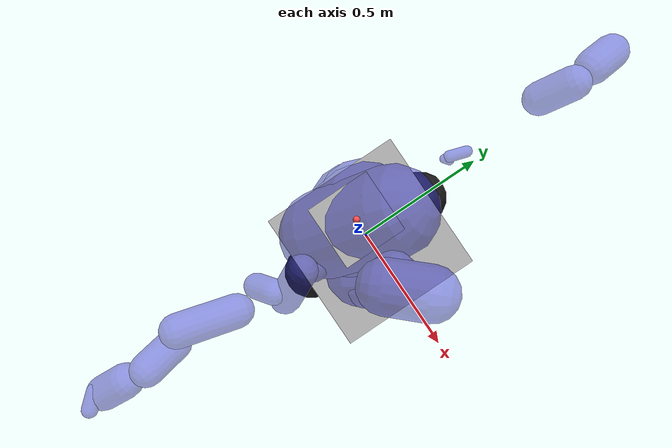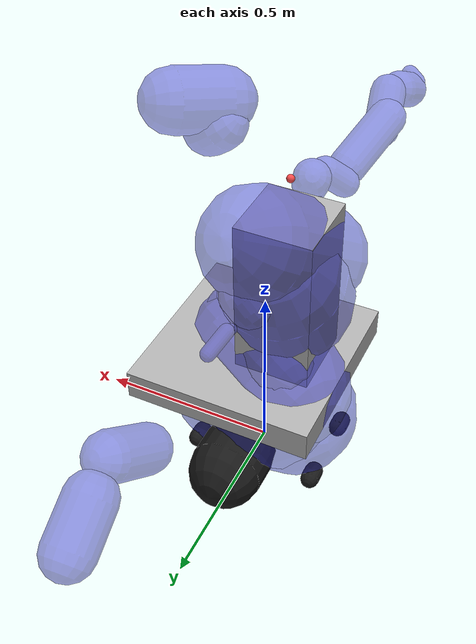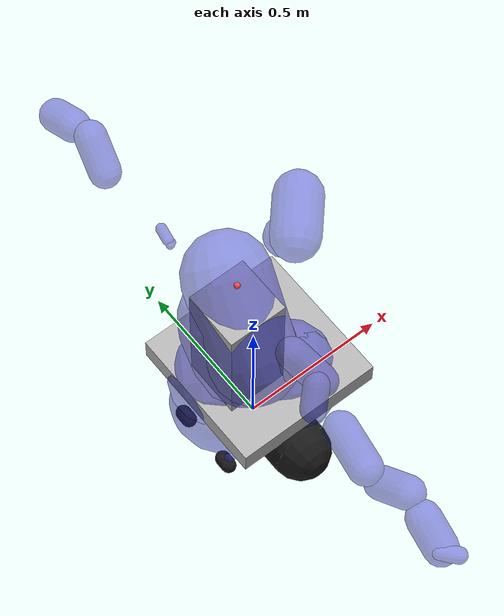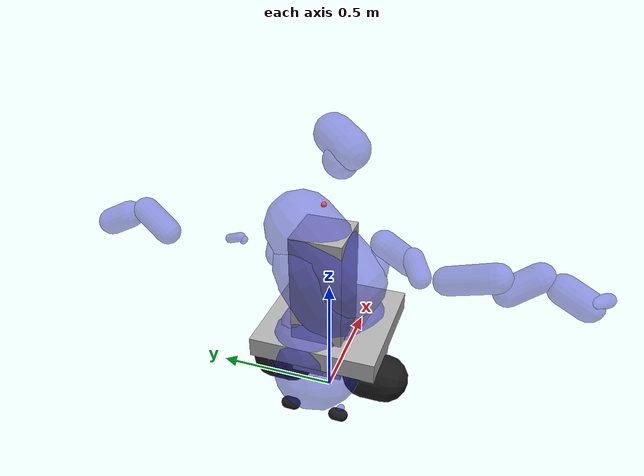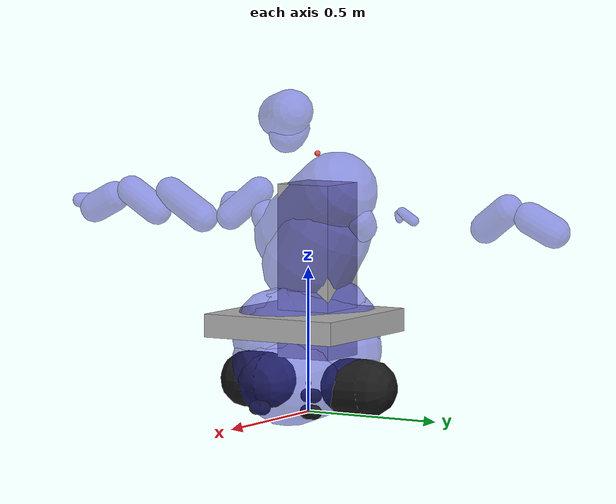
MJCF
<mujoco model="tiago_dual">
  <compiler angle="radian"/>
  <asset>
    <material name="DarkGrey" specular="0.5" shininess="0.45" rgba="0.1 0.1 0.1 1.0"/>
    <material name="Grey" specular="0.5" shininess="0.45" rgba="0.7 0.7 0.7 1.0"/>
    <material name="LightGrey" specular="0.5" shininess="0.45" rgba="0.7 0.7 0.7 1.0"/>
    <material name="White" specular="0.5" shininess="0.45" rgba="1.0 1.0 1.0 1.0"/>
    <material name="Orange" specular="0.5" shininess="0.45" rgba="1.0 0.35 0.0 1.0"/>
    <mesh name="base" file="meshes/base/base.stl"/>
    <mesh name="base_collision" file="meshes/base/high_resolution/base_collision.stl"/>
    <mesh name="base_ring" file="meshes/base/base_ring.stl"/>
    <mesh name="wheel" file="meshes/wheels/wheel.stl"/>
    <mesh name="caster_1" file="meshes/wheels/caster_1.stl"/>
    <mesh name="caster_2" file="meshes/wheels/caster_2.stl"/>
    <mesh name="torso_fix" file="meshes/torso/torso_fix.stl"/>
    <mesh name="torso_lift_dual_arm" file="meshes/torso/torso_lift_dual_arm.stl"/>
    <mesh name="torso_lift_collision_core" file="meshes/torso/torso_lift_collision_core.stl"/>
    <mesh name="torso_lift_collision_shoulder" file="meshes/torso/torso_lift_collision_shoulder.stl"/>
    <mesh name="head_1" file="meshes/head/head_1.stl"/>
    <mesh name="head_1_collision" file="meshes/head/head_1.stl"/>
    <mesh name="head_2" file="meshes/head/head_2.stl"/>
    <mesh name="head_2_collision" file="meshes/head/head_2.stl"/>
    <mesh name="arm_1" file="meshes/arm/arm_1.stl"/>
    <mesh name="arm_1_collision" file="meshes/arm/arm_1.stl"/>
    <mesh name="arm_2" file="meshes/arm/arm_2.stl"/>
    <mesh name="arm_2_collision" file="meshes/arm/arm_2.stl"/>
    <mesh name="arm_3" file="meshes/arm/arm_3.stl"/>
    <mesh name="arm_3_collision" file="meshes/arm/arm_3.stl"/>
    <mesh name="arm_4" file="meshes/arm/arm_4.stl"/>
    <mesh name="arm_4_collision" file="meshes/arm/arm_4.stl"/>
    <mesh name="arm_5-wrist-2017" file="meshes/arm/arm_5-wrist-2017.stl"/>
    <mesh name="arm_5_collision-wrist-2017" file="meshes/arm/arm_5-wrist-2017.stl"/>
    <mesh name="arm_6-wrist-2017" file="meshes/arm/arm_6-wrist-2017.stl"/>
    <mesh name="arm_6_collision-wrist-2017" file="meshes/arm/arm_6-wrist-2017.stl"/>
    <mesh name="arm_1_left" file="meshes/arm/arm_1.stl" scale="1 -1 -1"/>
    <mesh name="arm_1_left_collision" file="meshes/arm/arm_1.stl" scale="1 -1 -1"/>
    <mesh name="arm_2_left" file="meshes/arm/arm_2.stl" scale="1 1 -1"/>
    <mesh name="arm_2_left_collision" file="meshes/arm/arm_2.stl" scale="1 1 -1"/>
    <mesh name="arm_3_left" file="meshes/arm/arm_3.stl" scale="1 1 -1"/>
    <mesh name="arm_3_left_collision" file="meshes/arm/arm_3.stl" scale="1 1 -1"/>
    <mesh name="arm_4_left" file="meshes/arm/arm_4.stl" scale="-1 -1 -1"/>
    <mesh name="arm_4_left_collision" file="meshes/arm/arm_4.stl" scale="-1 -1 -1"/>
    <mesh name="arm_5_left-wrist-2017" file="meshes/arm/arm_5-wrist-2017.stl" scale="-1 -1 -1"/>
    <mesh name="arm_5_left_collision-wrist-2017" file="meshes/arm/arm_5-wrist-2017.stl" scale="-1 -1 -1"/>
    <mesh name="arm_6_left-wrist-2017" file="meshes/arm/arm_6-wrist-2017.stl" scale="-1 1 1"/>
    <mesh name="arm_6_left_collision-wrist-2017" file="meshes/arm/arm_6-wrist-2017.stl" scale="-1 1 1"/>
    <mesh name="gripper_link" file="meshes/grippers/gripper_link.stl"/>
    <mesh name="gripper_link_collision" file="meshes/grippers/gripper_link_collision.stl"/>
    <mesh name="gripper_finger_link" file="meshes/grippers/gripper_finger_link.stl"/>
    <mesh name="palm" file="meshes/grippers/palm.stl"/>
    <mesh name="palm_collision" file="meshes/grippers/palm_collision.stl"/>
    <mesh name="thumb_abd_collision" file="meshes/grippers/thumb_abd_collision.stl"/>
    <mesh name="finger_flex_collision" file="meshes/grippers/finger_flex_collision.stl"/>
    <mesh name="finger_flex_tip_collision" file="meshes/grippers/finger_flex_tip_collision.stl"/>
    <mesh name="finger_abd_collision" file="meshes/grippers/finger_abd_collision.stl"/>
  </asset>
  <worldbody>
    <body name="base">
      <inertial pos="0 0 0" mass="0.001" diaginertia="0.4 0.4 0.4"/>
      <body name="base_link" pos="0 0 0.0985">
        <inertial pos="-0.00000106 0.00000109 0.0000387" mass="28.26649" diaginertia="0.4 0.4 0.4"/>
        <geom type="capsule" material="White" contype="0" conaffinity="0" group="1" pos="0.002159 0.002249 0.051188" quat="0.659366 0.156062 0.735446 0.000000" size="0.175958 0.099486" rgba="0.2 0.2 0.8 0.5"/>
        <geom type="capsule" material="White" name="base_collision" group="0" friction="1 0 0" pos="0.003921 -0.002167 0.097960" quat="0.749785 -0.383643 -0.539111 0.000000" size="0.184157 0.080736" rgba="0.2 0.2 0.8 0.5"/>
        <body name="wheeled_base">
          <body name="base_cover_link" pos="0 0 0.13">
            <inertial pos="0.22414000000 0.00002000000 0.04681000000" mass="0.25821000000" diaginertia="0.4 0.4 0.4"/>
            <geom type="capsule" material="Orange" contype="0" conaffinity="0" group="1" pos="-0.005097 -0.008272 0.042501" quat="0.707126 0.371758 0.601472 0.000000" size="0.163036 0.105953" rgba="0.2 0.2 0.8 0.5"/>
          </body>
          <body name="wheel_right_link" pos="0 -0.2022 0" euler="-1.57079632679 0 0">
            <inertial pos="0 0 -0.00207" mass="1.82362" diaginertia="0.4 0.4 0.4"/>
            <geom type="capsule" material="DarkGrey" contype="0" conaffinity="0" group="1" pos="-0.000025 0.000011 0.002018" quat="0.707353 -0.630658 0.319253 0.000000" size="0.049652 0.048515" rgba="0.2 0.2 0.8 0.5"/>
            <geom type="capsule" material="DarkGrey" name="wheel_right_collision" group="0" friction="1 0 0" size="0.0985 0.04"/>
          </body>
          <body name="wheel_left_link" pos="0 0.2022 0" euler="-1.57079632679 0 0">
            <inertial pos="0 0 0.00207" mass="1.82362" diaginertia="0.4 0.4 0.4"/>
            <geom type="capsule" material="DarkGrey" contype="0" conaffinity="0" group="1" pos="-0.000025 0.000011 0.002018" quat="0.707353 -0.630658 0.319253 0.000000" size="0.049652 0.048515" rgba="0.2 0.2 0.8 0.5"/>
            <geom type="capsule" material="DarkGrey" name="wheel_left_collision" group="0" friction="1 0 0" size="0.0985 0.04"/>
          </body>
          <body name="ignore_caster_front_right_1_link" pos="0.1695 -0.102 -0.0335">
            <inertial pos="-0.00634599 0.00005347 -0.02037519" mass="0.05144761" diaginertia="0.4 0.4 0.4"/>
            <geom type="capsule" material="Grey" contype="0" conaffinity="0" group="1" pos="-0.007971 -0.000313 -0.023992" quat="0.359942 -0.773460 -0.521730 0.000000" size="0.014505 0.014686" rgba="0.2 0.2 0.8 0.5"/>
            <body name="ignore_caster_front_right_2_link" pos="-0.016 0.0000 -0.040" euler="-1.57079632679 0 0">
              <inertial pos="0 0 0" mass="0.08855784" diaginertia="0.4 0.4 0.4"/>
              <geom type="capsule" material="DarkGrey" contype="0" conaffinity="0" group="1" pos="0.000023 -0.000008 -0.000002" quat="0.706052 0.397287 0.586221 0.000000" size="0.016064 0.008968" rgba="0.2 0.2 0.8 0.5"/>
              <geom type="capsule" material="DarkGrey" name="front_right_caster_2" group="0" friction="1 0 0" size="0.025 0.015"/>
            </body>
          </body>
          <body name="ignore_caster_front_left_1_link" pos="0.1695 0.102 -0.0335">
            <inertial pos="-0.00634599 0.00005347 -0.02037519" mass="0.05144761" diaginertia="0.4 0.4 0.4"/>
            <geom type="capsule" material="Grey" contype="0" conaffinity="0" group="1" pos="-0.007971 -0.000313 -0.023992" quat="0.359942 -0.773460 -0.521730 0.000000" size="0.014505 0.014686" rgba="0.2 0.2 0.8 0.5"/>
            <body name="ignore_caster_front_left_2_link" pos="-0.016 0.0000 -0.040" euler="-1.57079632679 0 0">
              <inertial pos="0 0 0" mass="0.08855784" diaginertia="0.4 0.4 0.4"/>
              <geom type="capsule" material="DarkGrey" contype="0" conaffinity="0" group="1" pos="0.000023 -0.000008 -0.000002" quat="0.706052 0.397287 0.586221 0.000000" size="0.016064 0.008968" rgba="0.2 0.2 0.8 0.5"/>
              <geom type="capsule" material="DarkGrey" name="front_left_caster_2" group="0" friction="1 0 0" size="0.025 0.015"/>
            </body>
          </body>
          <body name="ignore_caster_back_right_1_link" pos="-0.1735 -0.102 -0.0335">
            <inertial pos="-0.00634599 0.00005347 -0.02037519" mass="0.05144761" diaginertia="0.4 0.4 0.4"/>
            <geom type="capsule" material="Grey" contype="0" conaffinity="0" group="1" pos="-0.007971 -0.000313 -0.023992" quat="0.359942 -0.773460 -0.521730 0.000000" size="0.014505 0.014686" rgba="0.2 0.2 0.8 0.5"/>
            <body name="ignore_caster_back_right_2_link" pos="-0.016 0.0000 -0.040" euler="-1.57079632679 0 0">
              <inertial pos="0 0 0" mass="0.08855784" diaginertia="0.4 0.4 0.4"/>
              <geom type="capsule" material="DarkGrey" contype="0" conaffinity="0" group="1" pos="0.000023 -0.000008 -0.000002" quat="0.706052 0.397287 0.586221 0.000000" size="0.016064 0.008968" rgba="0.2 0.2 0.8 0.5"/>
              <geom type="capsule" material="DarkGrey" name="back_right_caster_2" group="0" friction="1 0 0" size="0.025 0.015"/>
            </body>
          </body>
          <body name="ignore_caster_back_left_1_link" pos="-0.1735 0.102 -0.0335">
            <inertial pos="-0.00634599 0.00005347 -0.02037519" mass="0.05144761" diaginertia="0.4 0.4 0.4"/>
            <geom type="capsule" material="Grey" contype="0" conaffinity="0" group="1" pos="-0.007971 -0.000313 -0.023992" quat="0.359942 -0.773460 -0.521730 0.000000" size="0.014505 0.014686" rgba="0.2 0.2 0.8 0.5"/>
            <body name="ignore_caster_back_left_2_link" pos="-0.016 0.0000 -0.040" euler="-1.57079632679 0 0">
              <inertial pos="0 0 0" mass="0.08855784" diaginertia="0.4 0.4 0.4"/>
              <geom type="capsule" material="DarkGrey" contype="0" conaffinity="0" group="1" pos="0.000023 -0.000008 -0.000002" quat="0.706052 0.397287 0.586221 0.000000" size="0.016064 0.008968" rgba="0.2 0.2 0.8 0.5"/>
              <geom type="capsule" material="DarkGrey" name="back_left_caster_2" group="0" friction="1 0 0" size="0.025 0.015"/>
            </body>
          </body>
        </body>
        <body name="torso">
          <site name="center" pos="0 0 0" size="0.01" rgba="1 0.3 0.3 1" group="2"/>
          <body name="torso_fixed_link" pos="-0.062 0.0 0.193">
            <inertial pos="0.02435 -0.00464 0.15900" mass="14.01360" diaginertia="0.4 0.4 0.4"/>
            <geom type="capsule" material="LightGrey" contype="0" conaffinity="0" group="1" pos="0.080116 -0.007462 0.049814" quat="0.668584 0.442229 0.597854 0.000000" size="0.098550 0.132759" rgba="0.2 0.2 0.8 0.5"/>
            <geom type="box" material="LightGrey" name="torso_fixed_collision_box_1" group="0" friction="1 0 0" size="0.25 0.25 0.04" pos="0.085 0.0 0.02"/>
            <body name="torso_fixed_column_link" pos="0 0 0.195">
              <inertial pos="0 0 0" mass="0.01" diaginertia="0.4 0.4 0.4"/>
              <geom type="box" material="LightGrey" contype="0" conaffinity="0" group="1" size="0.10 0.10 0.3"/>
              <geom type="box" material="LightGrey" name="torso_fixed_column_collision" group="0" friction="1 0 0" size="0.10 0.10 0.3"/>
            </body>
            <body name="torso_lift_link" pos="0.0 0.0 0">
              <joint name="torso_lift_joint" type="slide" axis="0 0 1" damping="1000" range="0 0.35"/>
              <inertial pos="0.04361 -0.00116 -0.17334" mass="9.594213" diaginertia="0.4 0.4 0.4"/>
              <geom type="capsule" material="White" contype="0" conaffinity="0" group="1" pos="0.010101 -0.002529 0.391552" quat="0.891943 -0.434927 0.123596 0.000000" size="0.140323 0.133267" rgba="0.2 0.2 0.8 0.5"/>
              <geom type="capsule" material="LightGrey" name="torso_lift_collision" group="0" friction="1 0 0" pos="0.003763 0.000498 0.276000" quat="0.965599 -0.260035 0.000000 0.000000" size="0.163855 0.067422" rgba="0.2 0.2 0.8 0.5"/>
              <geom type="capsule" material="LightGrey" name="torso_lift_collision_shoulder_right" group="0" friction="1 0 0" pos="0.025861 0.184341 0.367257" quat="0.941861 -0.010865 0.335827 0.000000" size="0.053171 0.017788" rgba="0.2 0.2 0.8 0.5"/>
              <geom type="capsule" material="LightGrey" name="torso_lift_collision_shoulder_left" group="0" friction="1 0 0" pos="0.025861 -0.185659 0.367257" quat="0.941861 -0.010865 0.335827 0.000000" size="0.053171 0.017788" rgba="0.2 0.2 0.8 0.5"/>
              <body name="head" pos="0 0 0.597">
                <body name="head_1_link" pos="0.182 0.0 0.0" euler="0 0 0">
                  <joint name="head_1_joint" type="hinge" limited="true" axis="0 0 1" damping="20" range="-1.308996939 1.308996939"/>
                  <inertial pos="-0.00508 0.00237 0.07229" mass="0.62220" diaginertia="0.4 0.4 0.4"/>
                  <geom type="capsule" material="White" contype="0" conaffinity="0" group="1" pos="0.005346 0.000000 0.087972" quat="0.457834 0.000040 0.889038 0.000000" size="0.063461 0.017590" rgba="0.2 0.2 0.8 0.5"/>
                  <geom type="capsule" material="White" name="head_1_collision" group="0" friction="1 0 0" pos="0.005346 0.000000 0.087972" quat="0.457834 0.000040 0.889038 0.000000" size="0.063461 0.017590" rgba="0.2 0.2 0.8 0.5"/>
                  <body name="head_2_link" pos="0.005 0.0 0.098" euler="1.57079632679 0 0">
                    <camera mode="fixed" name="robotview" pos="0.07 0 0" quat="0.7071067811865476 0.0 -0.7071067811865475 0.0"/>
                    <joint name="head_2_joint" type="hinge" limited="true" axis="0 0 1" damping="20" range="-1.0471975512 0.785398163397"/>
                    <inertial pos="0.04700 0.05542 0.00022" mass="0.66123" diaginertia="0.4 0.4 0.4"/>
                    <geom type="capsule" material="White" contype="0" conaffinity="0" group="1" pos="0.036757 0.050823 -0.007884" quat="0.368499 -0.240691 0.897929 0.000000" size="0.076711 0.061187" rgba="0.2 0.2 0.8 0.5"/>
                    <geom type="capsule" material="White" name="head_2_collision" group="0" friction="1 0 0" pos="0.036757 0.050823 -0.007884" quat="0.368499 -0.240691 0.897929 0.000000" size="0.076711 0.061187" rgba="0.2 0.2 0.8 0.5"/>
                  </body>
                </body>
              </body>
              <body name="right_arm_mount" pos="0 0 0.597">
                <site name="right_center" pos="0 0 0" size="0.01" rgba="1 0.3 0.3 1" group="2"/>
                <body name="arm_right_1_link" pos="0.02556 -0.19 -0.171" euler="0 0 -1.57079632679">
                  <joint name="arm_right_1_joint" type="hinge" limited="true" axis="0 0 1" damping="10.0" range="-1.1780972451 1.57079632679"/>
                  <inertial pos="0.061191 -0.022397 -0.012835" mass="1.563428" diaginertia="0.4 0.4 0.4"/>
                  <geom type="capsule" material="White" contype="0" conaffinity="0" group="1" pos="0.070885 0.028596 -0.008437" quat="0.909735 0.169329 -0.379091 0.000000" size="0.049432 0.066805" rgba="0.2 0.2 0.8 0.5"/>
                  <geom type="capsule" material="White" name="arm_1_collision" group="0" friction="1 0 0" pos="0.070885 0.028596 -0.008437" quat="0.909735 0.169329 -0.379091 0.000000" size="0.049432 0.066805" rgba="0.2 0.2 0.8 0.5"/>
                  <body name="arm_right_2_link" pos="0.125 -0.0195 -0.031" euler="-1.57079632679 0.0 0.0">
                    <joint name="arm_right_2_joint" type="hinge" limited="true" axis="0 0 1" damping="100.0" range="-1.1780972451 1.57079632679"/>
                    <inertial pos="0.030432 0.000229 -0.005942" mass="1.800397" diaginertia="0.4 0.4 0.4"/>
                    <geom type="capsule" material="DarkGrey" contype="0" conaffinity="0" group="1" pos="0.025535 0.001831 0.012428" quat="0.463737 -0.690795 0.554753 0.000000" size="0.040146 0.036916" rgba="0.2 0.2 0.8 0.5"/>
                    <geom type="capsule" material="DarkGrey" name="arm_2_collision" group="0" friction="1 0 0" pos="0.025535 0.001831 0.012428" quat="0.463737 -0.690795 0.554753 0.000000" size="0.040146 0.036916" rgba="0.2 0.2 0.8 0.5"/>
                    <body name="arm_right_3_link" pos="0.0895 0.0 -0.0015" quat="0.5 -0.5 -0.5 0.5">
                      <joint name="arm_right_3_joint" type="hinge" limited="true" axis="0 0 1" damping="30.0" range="-0.785398163397 3.92699081699"/>
                      <inertial pos="0.007418 -0.004361 -0.134194" mass="2.343502" diaginertia="0.4 0.4 0.4"/>
                      <geom type="capsule" material="DarkGrey" contype="0" conaffinity="0" group="1" pos="-0.002032 0.003981 -0.131267" quat="0.968190 0.135080 0.210619 0.000000" size="0.053280 0.094945" rgba="0.2 0.2 0.8 0.5"/>
                      <geom type="capsule" material="DarkGrey" name="arm_3_collision" group="0" friction="1 0 0" pos="-0.002032 0.003981 -0.131267" quat="0.968190 0.135080 0.210619 0.000000" size="0.053280 0.094945" rgba="0.2 0.2 0.8 0.5"/>
                      <body name="arm_right_4_link" pos="-0.02 -0.027 -0.222" quat="0.5 -0.5 -0.5 -0.5">
                        <joint name="arm_right_4_joint" type="hinge" limited="true" axis="0 0 1" damping="10.0" range="-0.392699081699 2.35619449019"/>
                        <inertial pos="-0.095658 0.014666 0.018133" mass="1.432697" diaginertia="0.4 0.4 0.4"/>
                        <geom type="capsule" material="DarkGrey" contype="0" conaffinity="0" group="1" pos="-0.080214 0.009762 0.020024" quat="0.647596 0.447498 -0.616738 0.000000" size="0.051656 0.059036" rgba="0.2 0.2 0.8 0.5"/>
                        <geom type="capsule" material="DarkGrey" name="arm_4_collision" group="0" friction="1 0 0" pos="-0.080214 0.009762 0.020024" quat="0.647596 0.447498 -0.616738 0.000000" size="0.051656 0.059036" rgba="0.2 0.2 0.8 0.5"/>
                        <body name="arm_right_5_link" pos="-0.162 0.02 0.027" quat="0.7071067811865475 1.7312262734492379e-12 -0.7071067811865475 -1.7311707622980066e-12">
                          <joint name="arm_right_5_joint" type="hinge" limited="true" axis="0 0 1" damping="10.0" range="-2.09439510239 2.09439510239"/>
                          <inertial pos="0.001078 -0.000151 -0.077173" mass="1.655819" diaginertia="0.4 0.4 0.4"/>
                          <geom type="capsule" material="LightGrey" contype="0" conaffinity="0" group="1" pos="-0.004834 0.003189 0.087210" quat="0.231450 0.964881 -0.124243 0.000000" size="0.053599 0.049966" rgba="0.2 0.2 0.8 0.5"/>
                          <geom type="capsule" material="LightGrey" name="arm_5_collision" group="0" friction="1 0 0" pos="-0.004834 0.003189 0.087210" quat="0.231450 0.964881 -0.124243 0.000000" size="0.053599 0.049966" rgba="0.2 0.2 0.8 0.5"/>
                          <body name="arm_right_6_link" pos="0 0 0.15" quat="0.5 -0.5 -0.5 -0.5">
                            <joint name="arm_right_6_joint" type="hinge" limited="true" axis="0 0 1" damping="10.0" range="-1.41371669412 1.41371669412"/>
                            <inertial pos="-0.000153 -0.003122 0.000183" mass="0.370063" diaginertia="0.4 0.4 0.4"/>
                            <geom type="capsule" material="LightGrey" contype="0" conaffinity="0" group="1" pos="0.014795 -0.001329 0.000020" quat="0.703525 -0.462540 -0.539545 0.000000" size="0.025502 0.028024" rgba="0.2 0.2 0.8 0.5"/>
                            <geom type="capsule" material="LightGrey" name="arm_6_collision" group="0" friction="1 0 0" pos="0.014795 -0.001329 0.000020" quat="0.703525 -0.462540 -0.539545 0.000000" size="0.025502 0.028024" rgba="0.2 0.2 0.8 0.5"/>
                            <body name="right_hand" pos="0.05 0 0" quat="0.5 0.5 0.5 0.5">
                                                        </body>
                          </body>
                        </body>
                      </body>
                    </body>
                  </body>
                </body>
              </body>
              <body name="left_arm_mount" pos="0 0 0.597">
                <site name="left_center" pos="0 0 0" size="0.01" rgba="1 0.3 0.3 1" group="2"/>
                <body name="arm_left_1_link" pos="0.02556 0.19 -0.171" quat="0 0.7071067811882787 0.7071067811848163 0">
                  <joint name="arm_left_1_joint" type="hinge" limited="true" axis="0 0 1" damping="10.0" range="-1.1780972451 1.57079632679"/>
                  <inertial pos="0.061191 -0.022397 -0.012835" mass="1.563428" diaginertia="0.4 0.4 0.4"/>
                  <geom type="capsule" material="White" contype="0" conaffinity="0" group="1" pos="-0.023628 -0.009532 0.002812" quat="0.415190 -0.371022 0.830638 0.000000" size="0.016477 0.022268" rgba="0.2 0.2 0.8 0.5"/>
                  <geom type="capsule" material="White" name="arm_1_left_collision" group="0" friction="1 0 0" pos="-0.023628 -0.009532 0.002812" quat="0.415190 -0.371022 0.830638 0.000000" size="0.016477 0.022268" rgba="0.2 0.2 0.8 0.5"/>
                  <body name="arm_left_2_link" pos="0.125 -0.0195 0.031" euler="1.57079632679 0.0 0.0">
                    <joint name="arm_left_2_joint" type="hinge" limited="true" axis="0 0 1" damping="100.0" range="-1.1780972451 1.57079632679"/>
                    <inertial pos="0.030432 0.000229 -0.005942" mass="1.800397" diaginertia="0.4 0.4 0.4"/>
                    <geom type="capsule" material="DarkGrey" contype="0" conaffinity="0" group="1" pos="0.008512 0.000610 0.004143" quat="0.463737 -0.690795 0.554753 0.000000" size="0.013382 0.012305" rgba="0.2 0.2 0.8 0.5"/>
                    <geom type="capsule" material="DarkGrey" name="arm_2_left_collision" group="0" friction="1 0 0" pos="0.008512 0.000610 0.004143" quat="0.463737 -0.690795 0.554753 0.000000" size="0.013382 0.012305" rgba="0.2 0.2 0.8 0.5"/>
                    <body name="arm_left_3_link" pos="0.0895 0.0 -0.0015" quat="0.5 0.5 0.5 0.5">
                      <joint name="arm_left_3_joint" type="hinge" limited="true" axis="0 0 1" damping="30.0" range="-0.785398163397 3.92699081699"/>
                      <inertial pos="0.007418 -0.004361 -0.134194" mass="2.343502" diaginertia="0.4 0.4 0.4"/>
                      <geom type="capsule" material="DarkGrey" contype="0" conaffinity="0" group="1" pos="-0.000677 0.001327 -0.043756" quat="0.968190 0.135080 0.210619 0.000000" size="0.017760 0.031648" rgba="0.2 0.2 0.8 0.5"/>
                      <geom type="capsule" material="DarkGrey" name="arm_3_left_collision" group="0" friction="1 0 0" pos="-0.000677 0.001327 -0.043756" quat="0.968190 0.135080 0.210619 0.000000" size="0.017760 0.031648" rgba="0.2 0.2 0.8 0.5"/>
                      <body name="arm_left_4_link" pos="-0.02 -0.027 0.222" quat="0.5 0.5 -0.5 0.5">
                        <joint name="arm_left_4_joint" type="hinge" limited="true" axis="0 0 1" damping="10.0" range="-0.392699081699 2.35619449019"/>
                        <inertial pos="-0.095658 0.014666 0.018133" mass="1.432697" diaginertia="0.4 0.4 0.4"/>
                        <geom type="capsule" material="DarkGrey" contype="0" conaffinity="0" group="1" pos="0.080214 -0.009762 -0.020024" quat="0.761984 -0.380320 0.524154 0.000000" size="0.051656 0.059036" rgba="0.2 0.2 0.8 0.5"/>
                        <geom type="capsule" material="DarkGrey" name="arm_4_left_collision" group="0" friction="1 0 0" pos="0.080214 -0.009762 -0.020024" quat="0.761984 -0.380320 0.524154 0.000000" size="0.051656 0.059036" rgba="0.2 0.2 0.8 0.5"/>
                        <body name="arm_left_5_link" pos="0.162 -0.02 -0.027" quat="0.7071067811865475 0 -0.7071067811865475 0">
                          <joint name="arm_left_5_joint" type="hinge" limited="true" axis="0 0 1" damping="10.0" range="-2.09439510239 2.09439510239"/>
                          <inertial pos="0.001078 -0.000151 -0.077173" mass="1.655819" diaginertia="0.4 0.4 0.4"/>
                          <geom type="capsule" material="LightGrey" contype="0" conaffinity="0" group="1" pos="0.004834 -0.003189 -0.087210" quat="0.972847 -0.229554 0.029559 0.000000" size="0.053599 0.049966" rgba="0.2 0.2 0.8 0.5"/>
                          <geom type="capsule" material="LightGrey" name="arm_5_left_collision" group="0" friction="1 0 0" pos="0.004834 -0.003189 -0.087210" quat="0.972847 -0.229554 0.029559 0.000000" size="0.053599 0.049966" rgba="0.2 0.2 0.8 0.5"/>
                          <body name="arm_left_6_link" pos="0 0 -0.15" quat="0.5 -0.5 -0.5 -0.5">
                            <joint name="arm_left_6_joint" type="hinge" limited="true" axis="0 0 1" damping="10.0" range="-1.41371669412 1.41371669412"/>
                            <inertial pos="-0.000153 -0.003122 0.000183" mass="0.370063" diaginertia="0.4 0.4 0.4"/>
                            <geom type="capsule" material="LightGrey" contype="0" conaffinity="0" group="1" pos="0.004932 -0.000443 0.000007" quat="0.703525 -0.462540 -0.539545 0.000000" size="0.008501 0.009341" rgba="0.2 0.2 0.8 0.5"/>
                            <geom type="capsule" material="LightGrey" name="arm_6_left_collision" group="0" friction="1 0 0" pos="0.004932 -0.000443 0.000007" quat="0.703525 -0.462540 -0.539545 0.000000" size="0.008501 0.009341" rgba="0.2 0.2 0.8 0.5"/>
                            <body name="left_hand" pos="-0.05 0 0" quat="0.5 -0.5 -0.5 0.5">
                                                        </body>
                          </body>
                        </body>
                      </body>
                    </body>
                  </body>
                </body>
              </body>
            </body>
          </body>
        </body>
      </body>
    </body>
  </worldbody>
  <actuator>
    <motor ctrllimited="true" ctrlrange="-50 50" joint="arm_right_1_joint" name="torq_right_j1"/>
    <motor ctrllimited="true" ctrlrange="-50 50" joint="arm_right_2_joint" name="torq_right_j2"/>
    <motor ctrllimited="true" ctrlrange="-15 15" joint="arm_right_3_joint" name="torq_right_j3"/>
    <motor ctrllimited="true" ctrlrange="-15 15" joint="arm_right_4_joint" name="torq_right_j4"/>
    <motor ctrllimited="true" ctrlrange="-15 15" joint="arm_right_5_joint" name="torq_right_j5"/>
    <motor ctrllimited="true" ctrlrange="-15 15" joint="arm_right_6_joint" name="torq_right_j6"/>
    <motor ctrllimited="true" ctrlrange="-15 15" joint="arm_left_1_joint" name="torq_left_j1"/>
    <motor ctrllimited="true" ctrlrange="-50 50" joint="arm_left_2_joint" name="torq_left_j2"/>
    <motor ctrllimited="true" ctrlrange="-50 50" joint="arm_left_3_joint" name="torq_left_j3"/>
    <motor ctrllimited="true" ctrlrange="-15 15" joint="arm_left_4_joint" name="torq_left_j4"/>
    <motor ctrllimited="true" ctrlrange="-15 15" joint="arm_left_5_joint" name="torq_left_j5"/>
    <motor ctrllimited="true" ctrlrange="-15 15" joint="arm_left_6_joint" name="torq_left_j6"/>
    <motor ctrllimited="true" ctrlrange="-15 15" joint="head_1_joint" name="torq_head_pitch"/>
    <motor ctrllimited="true" ctrlrange="-15 15" joint="head_2_joint" name="torq_head_yaw"/>
    <motor ctrllimited="true" ctrlrange="-1000.0 1000.0" joint="torso_lift_joint" name="torq_torso_lift" forcelimited="false"/>
  </actuator>
</mujoco>
